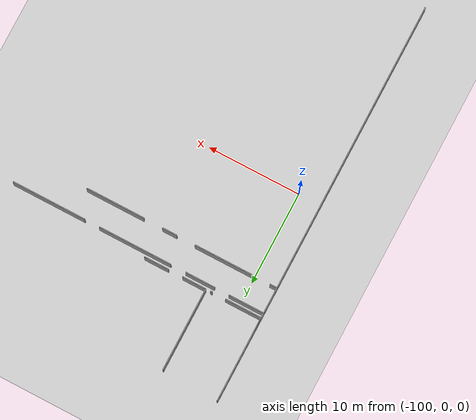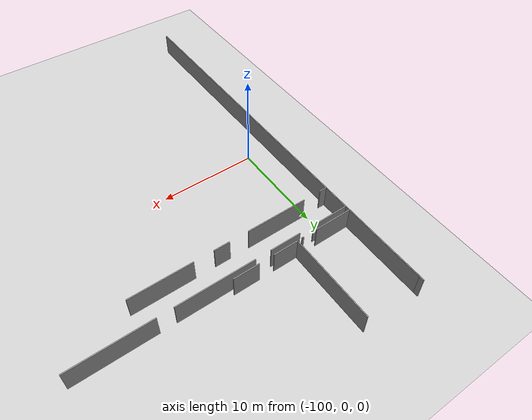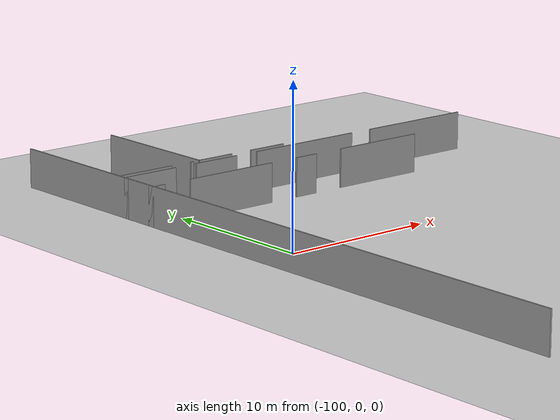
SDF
<sdf version="1.6">
 <world name="default">
  <model name="ground_plane">
   <static>1</static>
   <link name="link">
    <collision name="collision">
     <geometry><plane><normal>0 0 1</normal><size>100 100</size></plane></geometry>
     <surface><friction><ode><mu>100</mu><mu2>50</mu2></ode></friction></surface>
    </collision>
    <visual name="visual">
     <cast_shadows>0</cast_shadows>
     <geometry><plane><normal>0 0 1</normal><size>100 100</size></plane></geometry>
     <material>
      <script><uri>file://media/materials/scripts/gazebo.material</uri><name>Gazebo/Grey</name></script>
     </material>
    </visual>
   </link>
  </model>
  <model name="50010536_PLAN4">
   <static>1</static>
   <link name="Wall_6">
    <collision name="Wall_6_Collision">
     <geometry><box><size>6.37399612735 0.1 2.5</size></box></geometry>
     <pose>3.18699806368 0 1.25 0 0 0</pose>
    </collision>
    <visual name="Wall_6_Visual">
     <pose>3.18699806368 0 1.25 0 0 0</pose>
     <geometry><box><size>6.37399612735 0.1 2.5</size></box></geometry>
     <material>
      <script><uri>file://media/materials/scripts/gazebo.material</uri><name>Gazebo/Grey</name></script>
      <ambient>1 1 1 1</ambient>
     </material>
    </visual>
    <pose>21.1132146145 -12.5419166429 0 0 0 3.14159265359</pose>
   </link>
   <link name="Wall_7">
    <collision name="Wall_7_Collision">
     <geometry><box><size>1.61152906072 0.1 2.5</size></box></geometry>
     <pose>0.805764530362 0 1.25 0 0 0</pose>
    </collision>
    <visual name="Wall_7_Visual">
     <pose>0.805764530362 0 1.25 0 0 0</pose>
     <geometry><box><size>1.61152906072 0.1 2.5</size></box></geometry>
     <material>
      <script><uri>file://media/materials/scripts/gazebo.material</uri><name>Gazebo/Grey</name></script>
      <ambient>1 1 1 1</ambient>
     </material>
    </visual>
    <pose>12.6919214043 -12.5419166429 0 0 0 3.14159265359</pose>
   </link>
   <link name="Wall_8">
    <collision name="Wall_8_Collision">
     <geometry><box><size>6.3760022855 0.1 2.5</size></box></geometry>
     <pose>3.18800114275 0 1.25 0 0 0</pose>
    </collision>
    <visual name="Wall_8_Visual">
     <pose>3.18800114275 0 1.25 0 0 0</pose>
     <geometry><box><size>6.3760022855 0.1 2.5</size></box></geometry>
     <material>
      <script><uri>file://media/materials/scripts/gazebo.material</uri><name>Gazebo/Grey</name></script>
      <ambient>1 1 1 1</ambient>
     </material>
    </visual>
    <pose>9.07677364061 -12.5419166429 0 0 0 3.14159265359</pose>
   </link>
   <link name="Wall_9">
    <collision name="Wall_9_Collision">
     <geometry><box><size>0.779481319239 0.1 2.5</size></box></geometry>
     <pose>0.38974065962 0 1.25 0 0 0</pose>
    </collision>
    <visual name="Wall_9_Visual">
     <pose>0.38974065962 0 1.25 0 0 0</pose>
     <geometry><box><size>0.779481319239 0.1 2.5</size></box></geometry>
     <material>
      <script><uri>file://media/materials/scripts/gazebo.material</uri><name>Gazebo/Grey</name></script>
      <ambient>1 1 1 1</ambient>
     </material>
    </visual>
    <pose>0.779481319239 -12.5419166429 0 0 0 3.14159265359</pose>
   </link>
   <link name="Wall_10">
    <collision name="Wall_10_Collision">
     <geometry><box><size>0.465479478145 0.1 2.5</size></box></geometry>
     <pose>0.232739739072 0 1.25 0 0 0</pose>
    </collision>
    <visual name="Wall_10_Visual">
     <pose>0.232739739072 0 1.25 0 0 0</pose>
     <geometry><box><size>0.465479478145 0.1 2.5</size></box></geometry>
     <material>
      <script><uri>file://media/materials/scripts/gazebo.material</uri><name>Gazebo/Grey</name></script>
      <ambient>1 1 1 1</ambient>
     </material>
    </visual>
    <pose>0.0 -12.5419166429 0 0 0 1.57079632679</pose>
   </link>
   <link name="Wall_11">
    <collision name="Wall_11_Collision">
     <geometry><box><size>0.38424277053 0.1 2.5</size></box></geometry>
     <pose>0.192121385265 0 1.25 0 0 0</pose>
    </collision>
    <visual name="Wall_11_Visual">
     <pose>0.192121385265 0 1.25 0 0 0</pose>
     <geometry><box><size>0.38424277053 0.1 2.5</size></box></geometry>
     <material>
      <script><uri>file://media/materials/scripts/gazebo.material</uri><name>Gazebo/Grey</name></script>
      <ambient>1 1 1 1</ambient>
     </material>
    </visual>
    <pose>0.0 -10.1113671714 0 0 0 1.57079632679</pose>
   </link>
   <link name="Wall_12">
    <collision name="Wall_12_Collision">
     <geometry><box><size>3.85352506111 0.1 2.5</size></box></geometry>
     <pose>1.92676253055 0 1.25 0 0 0</pose>
    </collision>
    <visual name="Wall_12_Visual">
     <pose>1.92676253055 0 1.25 0 0 0</pose>
     <geometry><box><size>3.85352506111 0.1 2.5</size></box></geometry>
     <material>
      <script><uri>file://media/materials/scripts/gazebo.material</uri><name>Gazebo/Grey</name></script>
      <ambient>1 1 1 1</ambient>
     </material>
    </visual>
    <pose>0.0 -9.72712440085 0 0 0 0.0</pose>
   </link>
   <link name="Wall_13">
    <collision name="Wall_13_Collision">
     <geometry><box><size>3.21462717836 0.1 2.5</size></box></geometry>
     <pose>1.60731358918 0 1.25 0 0 0</pose>
    </collision>
    <visual name="Wall_13_Visual">
     <pose>1.60731358918 0 1.25 0 0 0</pose>
     <geometry><box><size>3.21462717836 0.1 2.5</size></box></geometry>
     <material>
      <script><uri>file://media/materials/scripts/gazebo.material</uri><name>Gazebo/Grey</name></script>
      <ambient>1 1 1 1</ambient>
     </material>
    </visual>
    <pose>5.41469701298 -9.72712440085 0 0 0 0.0</pose>
   </link>
   <link name="Wall_14">
    <collision name="Wall_14_Collision">
     <geometry><box><size>7.98552518808 0.1 2.5</size></box></geometry>
     <pose>3.99276259404 0 1.25 0 0 0</pose>
    </collision>
    <visual name="Wall_14_Visual">
     <pose>3.99276259404 0 1.25 0 0 0</pose>
     <geometry><box><size>7.98552518808 0.1 2.5</size></box></geometry>
     <material>
      <script><uri>file://media/materials/scripts/gazebo.material</uri><name>Gazebo/Grey</name></script>
      <ambient>1 1 1 1</ambient>
     </material>
    </visual>
    <pose>10.2527886233 -9.72712440085 0 0 0 0.0</pose>
   </link>
   <link name="Wall_15">
    <collision name="Wall_15_Collision">
     <geometry><box><size>7.99974605593 0.1 2.5</size></box></geometry>
     <pose>3.99987302797 0 1.25 0 0 0</pose>
    </collision>
    <visual name="Wall_15_Visual">
     <pose>3.99987302797 0 1.25 0 0 0</pose>
     <geometry><box><size>7.99974605593 0.1 2.5</size></box></geometry>
     <material>
      <script><uri>file://media/materials/scripts/gazebo.material</uri><name>Gazebo/Grey</name></script>
      <ambient>1 1 1 1</ambient>
     </material>
    </visual>
    <pose>19.8229248008 -9.72712440085 0 0 0 0.0</pose>
   </link>
   <link name="Wall_22">
    <collision name="Wall_22_Collision">
     <geometry><box><size>0.196197187569 0.1 2.5</size></box></geometry>
     <pose>0.0980985937847 0 1.25 0 0 0</pose>
    </collision>
    <visual name="Wall_22_Visual">
     <pose>0.0980985937847 0 1.25 0 0 0</pose>
     <geometry><box><size>0.196197187569 0.1 2.5</size></box></geometry>
     <material>
      <script><uri>file://media/materials/scripts/gazebo.material</uri><name>Gazebo/Grey</name></script>
      <ambient>1 1 1 1</ambient>
     </material>
    </visual>
    <pose>5.59443862489 -9.21463987557 0 0 0 3.14159265359</pose>
   </link>
   <link name="Wall_23">
    <collision name="Wall_23_Collision">
     <geometry><box><size>3.92384217376 0.1 2.5</size></box></geometry>
     <pose>1.96192108688 0 1.25 0 0 0</pose>
    </collision>
    <visual name="Wall_23_Visual">
     <pose>1.96192108688 0 1.25 0 0 0</pose>
     <geometry><box><size>3.92384217376 0.1 2.5</size></box></geometry>
     <material>
      <script><uri>file://media/materials/scripts/gazebo.material</uri><name>Gazebo/Grey</name></script>
      <ambient>1 1 1 1</ambient>
     </material>
    </visual>
    <pose>3.92889566073 -9.21463987557 0 0 0 3.14159265359</pose>
   </link>
   <link name="Wall_24">
    <collision name="Wall_24_Collision">
     <geometry><box><size>8.73316192109 0.1 2.5</size></box></geometry>
     <pose>4.36658096054 0 1.25 0 0 0</pose>
    </collision>
    <visual name="Wall_24_Visual">
     <pose>4.36658096054 0 1.25 0 0 0</pose>
     <geometry><box><size>8.73316192109 0.1 2.5</size></box></geometry>
     <material>
      <script><uri>file://media/materials/scripts/gazebo.material</uri><name>Gazebo/Grey</name></script>
      <ambient>1 1 1 1</ambient>
     </material>
    </visual>
    <pose>0.0050534869695 -9.21463987557 0 0 0 1.57079632679</pose>
   </link>
   <link name="Wall_28">
    <collision name="Wall_28_Collision">
     <geometry><box><size>2.67657048535 0.1 2.5</size></box></geometry>
     <pose>1.33828524268 0 1.25 0 0 0</pose>
    </collision>
    <visual name="Wall_28_Visual">
     <pose>1.33828524268 0 1.25 0 0 0</pose>
     <geometry><box><size>2.67657048535 0.1 2.5</size></box></geometry>
     <material>
      <script><uri>file://media/materials/scripts/gazebo.material</uri><name>Gazebo/Grey</name></script>
      <ambient>1 1 1 1</ambient>
     </material>
    </visual>
    <pose>12.9141224645 -9.19244516395 0 0 0 3.14159265359</pose>
   </link>
   <link name="Wall_29">
    <collision name="Wall_29_Collision">
     <geometry><box><size>2.57557692918 0.1 2.5</size></box></geometry>
     <pose>1.28778846459 0 1.25 0 0 0</pose>
    </collision>
    <visual name="Wall_29_Visual">
     <pose>1.28778846459 0 1.25 0 0 0</pose>
     <geometry><box><size>2.57557692918 0.1 2.5</size></box></geometry>
     <material>
      <script><uri>file://media/materials/scripts/gazebo.material</uri><name>Gazebo/Grey</name></script>
      <ambient>1 1 1 1</ambient>
     </material>
    </visual>
    <pose>8.68468399835 -9.19244516395 0 0 0 3.14159265359</pose>
   </link>
   <link name="Wall_30">
    <collision name="Wall_30_Collision">
     <geometry><box><size>8.97070120306 0.1 2.5</size></box></geometry>
     <pose>4.48535060153 0 1.25 0 0 0</pose>
    </collision>
    <visual name="Wall_30_Visual">
     <pose>4.48535060153 0 1.25 0 0 0</pose>
     <geometry><box><size>8.97070120306 0.1 2.5</size></box></geometry>
     <material>
      <script><uri>file://media/materials/scripts/gazebo.material</uri><name>Gazebo/Grey</name></script>
      <ambient>1 1 1 1</ambient>
     </material>
    </visual>
    <pose>6.10910706917 -9.19244516395 0 0 0 1.57079632679</pose>
   </link>
   <link name="Wall_346">
    <collision name="Wall_346_Collision">
     <geometry><box><size>44.1119893343 0.1 2.5</size></box></geometry>
     <pose>22.0559946672 0 1.25 0 0 0</pose>
    </collision>
    <visual name="Wall_346_Visual">
     <pose>22.0559946672 0 1.25 0 0 0</pose>
     <geometry><box><size>44.1119893343 0.1 2.5</size></box></geometry>
     <material>
      <script><uri>file://media/materials/scripts/gazebo.material</uri><name>Gazebo/Grey</name></script>
      <ambient>1 1 1 1</ambient>
     </material>
    </visual>
    <pose>0.0 -44.1119893343 0 0 0 1.57079632679</pose>
   </link>
   <pose>-102.5 22.0619893343 0 0 0 0</pose>
  </model>
 </world>
</sdf>
